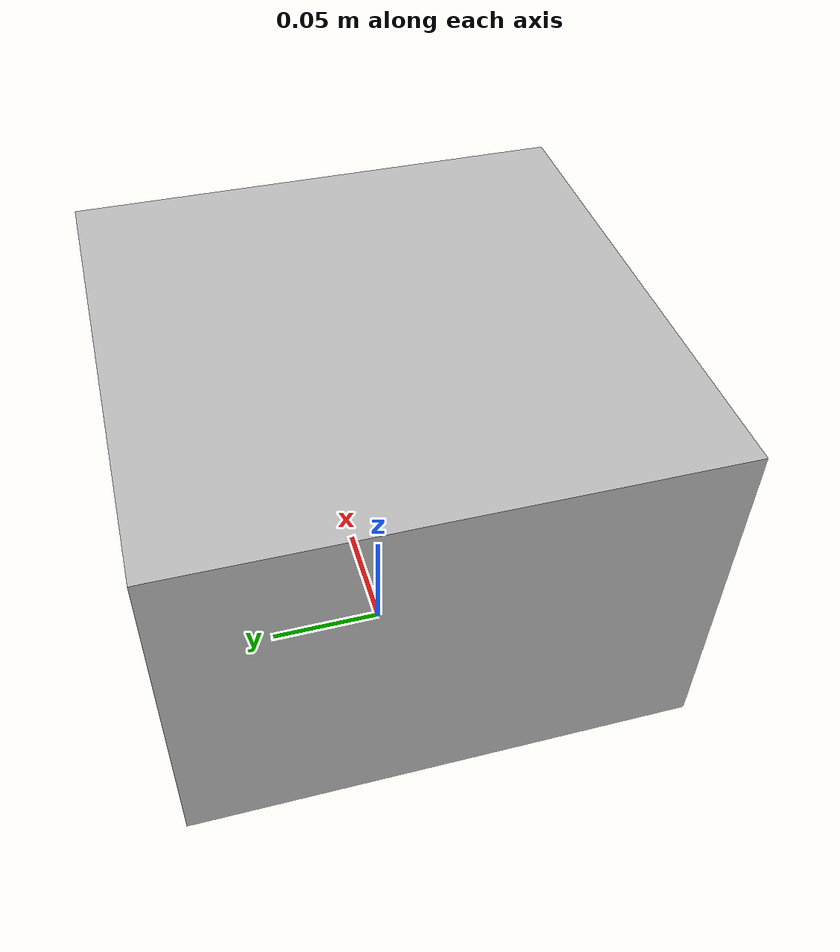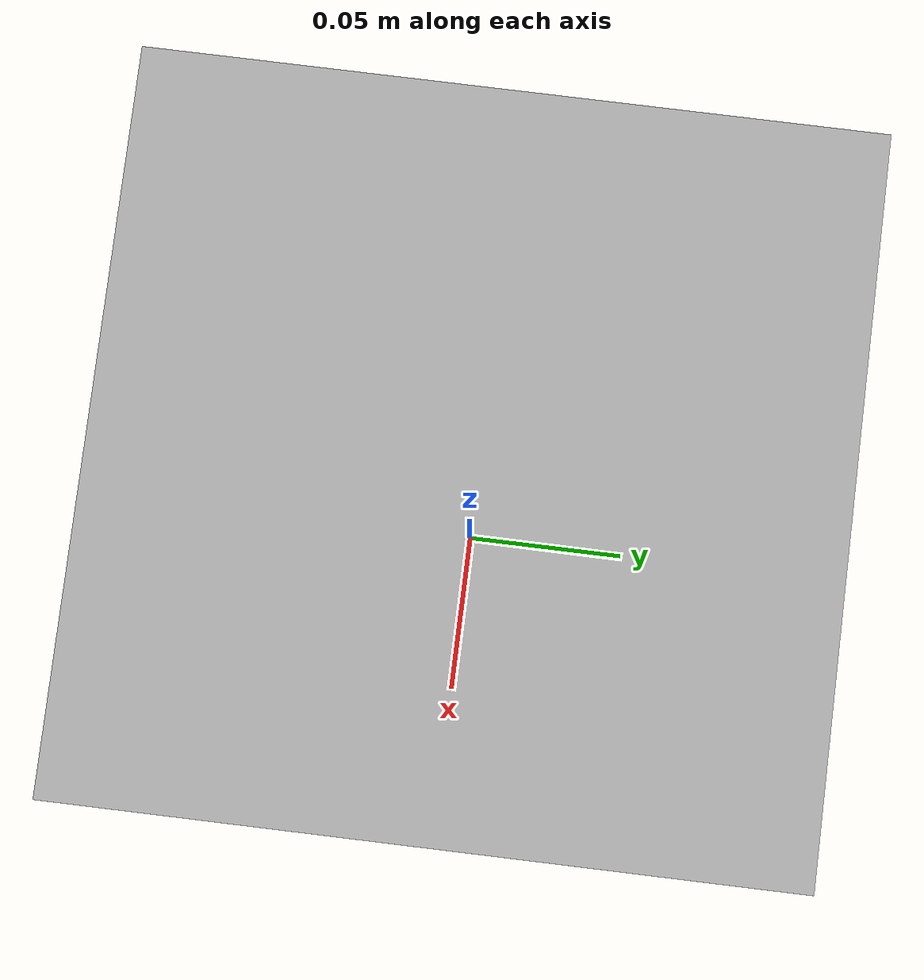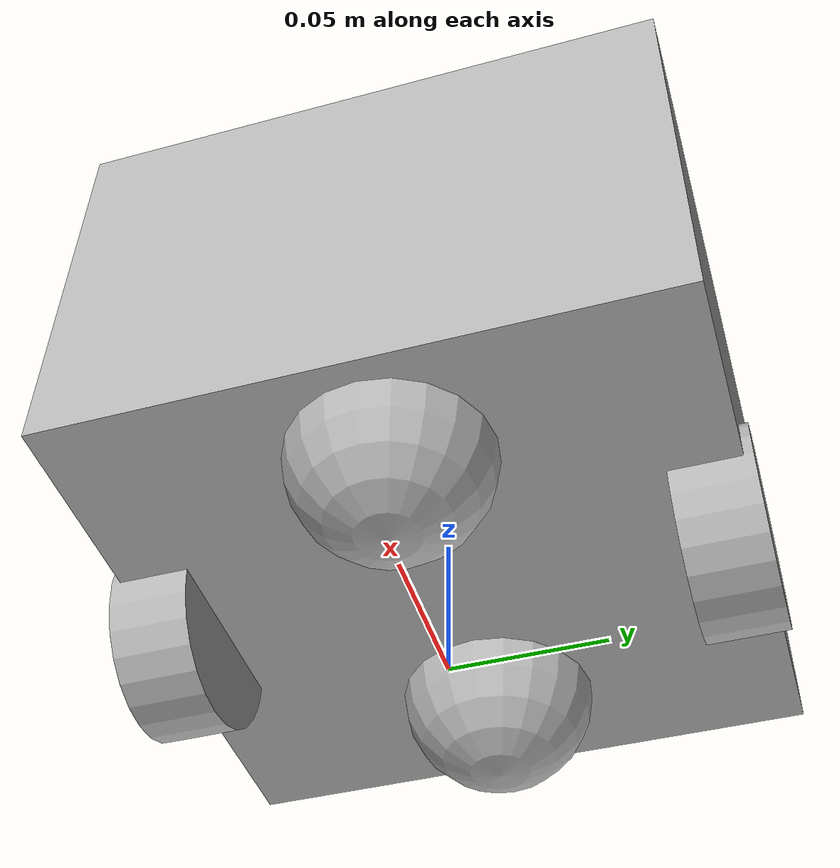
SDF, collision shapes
<?xml version="1.0" ?>
<sdf version="1.4">
    <model name="robot_thesis">
        <static>false</static>
        <link name="robot_base">
            <inertial>
                <pose>0 0 .1025 0 0 0</pose>
                <inertia>
                    <ixx>0.001</ixx>
                    <ixy>0.000</ixy>
                    <ixz>0.000</ixz>
                    <iyy>0.001</iyy>
                    <iyz>0.000</iyz>
                    <izz>0.001</izz>
                </inertia>
                <mass>1.0</mass>
            </inertial>
            <collision name="collision">
                <pose>0 0 .1025 0 0 0</pose>
                <geometry>
                    <box>
                        <size>.2 .2 .14</size>
                    </box>
                </geometry>
            </collision>
            <visual name="visual">
                <pose>0 0 .0625 0 0 -1.5707</pose>
                <geometry>
                    <mesh>
                        <uri>model://robot_thesis/meshs/dae/robot_base.dae</uri>
                    </mesh>
                </geometry>
            </visual>
            <collision name="caster_front_collision">
                <pose>-0.06 0 0.0325 0 0 0</pose>
                <geometry>
                    <sphere>
                        <radius>.0325</radius>
                    </sphere>
                </geometry>
                <surface>
                    <friction>
                        <ode>
                            <mu>0</mu>
                            <mu2>0</mu2>
                            <slip1>1.0</slip1>
                            <slip2>1.0</slip2>
                        </ode>
                    </friction>
                </surface>
            </collision>
            <collision name="caster_behind_collision">
                <pose>0.06 0 0.0325 0 0 0</pose>
                <geometry>
                    <sphere>
                        <radius>.0325</radius>
                    </sphere>
                </geometry>
                <surface>
                    <friction>
                        <ode>
                            <mu>0</mu>
                            <mu2>0</mu2>
                            <slip1>1.0</slip1>
                            <slip2>1.0</slip2>
                        </ode>
                    </friction>
                </surface>
            </collision>
        </link>
        <link name="robot_leftwheel">
            <inertial>
                <pose>0 0.09 0.0325 -1.57 0 0</pose>
                <inertia>
                    <ixx>0.001</ixx>
                    <ixy>0.000</ixy>
                    <ixz>0.000</ixz>
                    <iyy>0.001</iyy>
                    <iyz>0.000</iyz>
                    <izz>0.001</izz>
                </inertia>
                <mass>0.1</mass>
            </inertial>
            <collision name="collision">
                <pose>0 0.09 0.0325 -1.57 0 0</pose>
                <geometry>
                    <cylinder>
                        <radius>.0325</radius>
                        <length>.026</length>
                    </cylinder>
                </geometry>
            </collision>
            <visual name="visual">
                <pose>0 0.09 0.0325 0 0  3.14  </pose>
                <geometry>
                    <mesh>
                        <uri>model://robot_thesis/meshs/dae/robot_wheel.dae</uri>
                    </mesh>
                </geometry>
            </visual>
        </link>
        <link name="robot_rightwheel">
            <inertial>
                <pose>0 -0.09 0.0325 -1.57 0 0</pose>
                <inertia>
                    <ixx>0.001</ixx>
                    <ixy>0.000</ixy>
                    <ixz>0.000</ixz>
                    <iyy>0.001</iyy>
                    <iyz>0.000</iyz>
                    <izz>0.001</izz>
                </inertia>
                <mass>0.1</mass>
            </inertial>
            <collision name="collision">
                <pose>0 -0.09 0.0325 -1.57 0 0</pose>
                <geometry>
                    <cylinder>
                        <radius>.0325</radius>
                        <length>.026</length>
                    </cylinder>
                </geometry>
            </collision>
            <visual name="visual">
                <pose>0 -0.09 0.0325 0 0 0</pose>
                <geometry>
                    <mesh>
                        <uri>model://robot_thesis/meshs/dae/robot_wheel.dae</uri>
                    </mesh>
                </geometry>
            </visual>
        </link>
        <joint name="left_wheel_hinge" type="revolute">
            <pose>0 0.09 0.0325 -1.57 0 0</pose>
            <child>robot_leftwheel</child>
            <parent>robot_base</parent>
            <axis>
                <xyz>0 1 0</xyz>
            </axis>
        </joint>
        <joint name="right_wheel_hinge" type="revolute">
            <pose>0 -0.09 0.0325 -1.57 0 0</pose>
            <child>robot_rightwheel</child>
            <parent>robot_base</parent>
            <axis>
                <xyz>0 1 0</xyz>
            </axis>
        </joint>
    </model>
</sdf>
